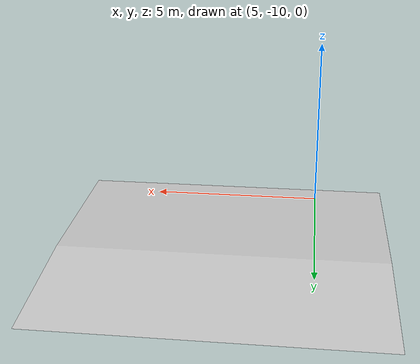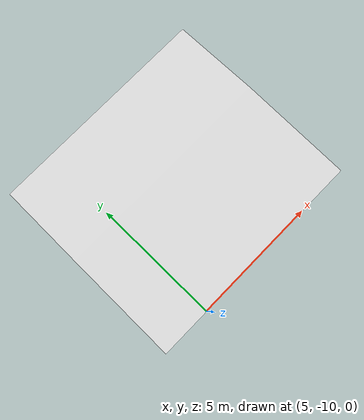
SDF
<?xml version='1.0'?>
<sdf version='1.6'>
  <model name='slope_5deg_incline'>
  <pose>12 -2 0  1.5708 0 -1.5708</pose>
  <static>true</static>
  <link name="body">
  <collision name="collision">
    <geometry>
      <mesh><uri>model://slope_incline/slope_5deg.dae</uri></mesh>
    </geometry>
    <surface>
      <friction>
        <ode>
          <mu>100</mu>
          <mu2>50</mu2>
        </ode>
      </friction>
    </surface>
  </collision>
    <visual name="visual">
      <geometry>
        <mesh><uri>model://slope_incline/slope_5deg.dae</uri></mesh>
      </geometry>
    </visual>
  </link>
  </model>
</sdf>
